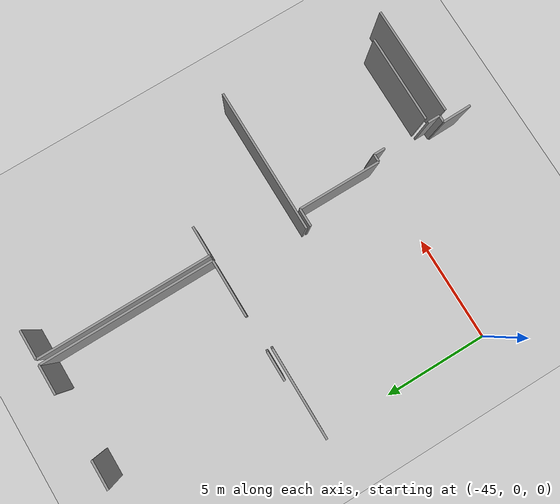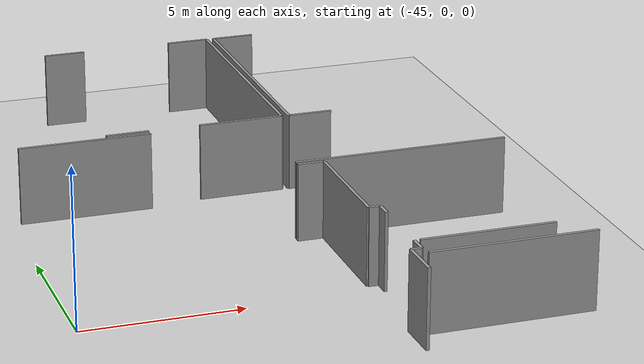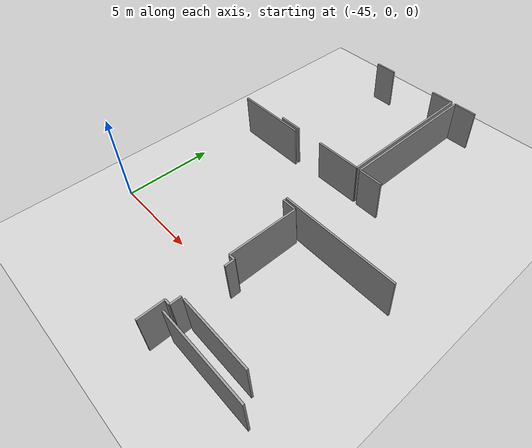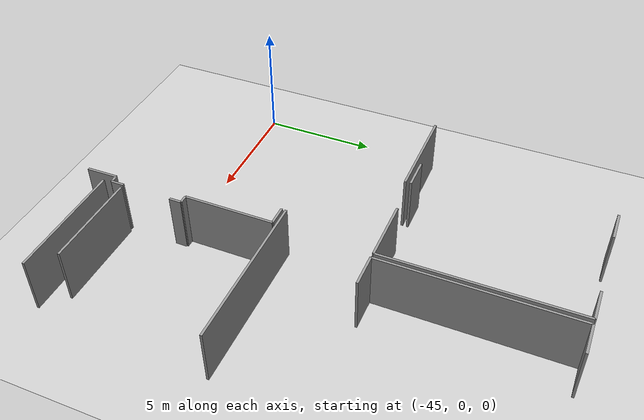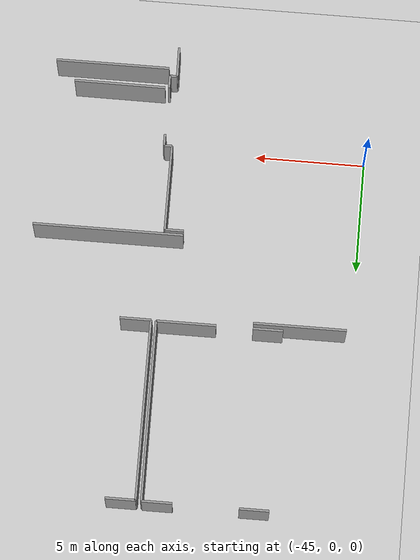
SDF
<sdf version="1.6">
 <world name="default">
  <model name="ground_plane">
   <static>1</static>
   <link name="link">
    <collision name="collision">
     <geometry><plane><normal>0 0 1</normal><size>100 100</size></plane></geometry>
     <surface><friction><ode><mu>100</mu><mu2>50</mu2></ode></friction></surface>
    </collision>
    <visual name="visual">
     <cast_shadows>0</cast_shadows>
     <geometry><plane><normal>0 0 1</normal><size>100 100</size></plane></geometry>
     <material>
      <script><uri>file://media/materials/scripts/gazebo.material</uri><name>Gazebo/Grey</name></script>
     </material>
    </visual>
   </link>
  </model>
  <model name="50041173">
   <static>1</static>
   <link name="Wall_6">
    <collision name="Wall_6_Collision">
     <geometry><box><size>2.70963974714 0.1 2.5</size></box></geometry>
     <pose>1.35481987357 0 1.25 0 0 0</pose>
    </collision>
    <visual name="Wall_6_Visual">
     <pose>1.35481987357 0 1.25 0 0 0</pose>
     <geometry><box><size>2.70963974714 0.1 2.5</size></box></geometry>
     <material>
      <script><uri>file://media/materials/scripts/gazebo.material</uri><name>Gazebo/Grey</name></script>
      <ambient>1 1 1 1</ambient>
     </material>
    </visual>
    <pose>29.5275330676 -8.22780471705 0 0 0 3.14159265359</pose>
   </link>
   <link name="Wall_7">
    <collision name="Wall_7_Collision">
     <geometry><box><size>1.36865622382 0.1 2.5</size></box></geometry>
     <pose>0.684328111909 0 1.25 0 0 0</pose>
    </collision>
    <visual name="Wall_7_Visual">
     <pose>0.684328111909 0 1.25 0 0 0</pose>
     <geometry><box><size>1.36865622382 0.1 2.5</size></box></geometry>
     <material>
      <script><uri>file://media/materials/scripts/gazebo.material</uri><name>Gazebo/Grey</name></script>
      <ambient>1 1 1 1</ambient>
     </material>
    </visual>
    <pose>25.1530884257 -8.22780471705 0 0 0 3.14159265359</pose>
   </link>
   <link name="Wall_9">
    <collision name="Wall_9_Collision">
     <geometry><box><size>1.35380436162 0.1 2.5</size></box></geometry>
     <pose>0.676902180812 0 1.25 0 0 0</pose>
    </collision>
    <visual name="Wall_9_Visual">
     <pose>0.676902180812 0 1.25 0 0 0</pose>
     <geometry><box><size>1.35380436162 0.1 2.5</size></box></geometry>
     <material>
      <script><uri>file://media/materials/scripts/gazebo.material</uri><name>Gazebo/Grey</name></script>
      <ambient>1 1 1 1</ambient>
     </material>
    </visual>
    <pose>23.7844322019 -0.00964736347711 0 0 0 0.0</pose>
   </link>
   <link name="Wall_10">
    <collision name="Wall_10_Collision">
     <geometry><box><size>1.37906522125 0.1 2.5</size></box></geometry>
     <pose>0.689532610627 0 1.25 0 0 0</pose>
    </collision>
    <visual name="Wall_10_Visual">
     <pose>0.689532610627 0 1.25 0 0 0</pose>
     <geometry><box><size>1.37906522125 0.1 2.5</size></box></geometry>
     <material>
      <script><uri>file://media/materials/scripts/gazebo.material</uri><name>Gazebo/Grey</name></script>
      <ambient>1 1 1 1</ambient>
     </material>
    </visual>
    <pose>28.1268882175 -0.00964736347711 0 0 0 0.0</pose>
   </link>
   <link name="Wall_11">
    <collision name="Wall_11_Collision">
     <geometry><box><size>8.21818568594 0.1 2.5</size></box></geometry>
     <pose>4.10909284297 0 1.25 0 0 0</pose>
    </collision>
    <visual name="Wall_11_Visual">
     <pose>4.10909284297 0 1.25 0 0 0</pose>
     <geometry><box><size>8.21818568594 0.1 2.5</size></box></geometry>
     <material>
      <script><uri>file://media/materials/scripts/gazebo.material</uri><name>Gazebo/Grey</name></script>
      <ambient>1 1 1 1</ambient>
     </material>
    </visual>
    <pose>29.5059534388 -0.00964736347711 0 0 0 -1.56817048522</pose>
   </link>
   <link name="Wall_13">
    <collision name="Wall_13_Collision">
     <geometry><box><size>1.40800731169 0.1 2.5</size></box></geometry>
     <pose>0.704003655843 0 1.25 0 0 0</pose>
    </collision>
    <visual name="Wall_13_Visual">
     <pose>0.704003655843 0 1.25 0 0 0</pose>
     <geometry><box><size>1.40800731169 0.1 2.5</size></box></geometry>
     <material>
      <script><uri>file://media/materials/scripts/gazebo.material</uri><name>Gazebo/Grey</name></script>
      <ambient>1 1 1 1</ambient>
     </material>
    </visual>
    <pose>31.1679656757 -8.24595699307 0 0 0 3.14159265359</pose>
   </link>
   <link name="Wall_14">
    <collision name="Wall_14_Collision">
     <geometry><box><size>8.22602757115 0.1 2.5</size></box></geometry>
     <pose>4.11301378557 0 1.25 0 0 0</pose>
    </collision>
    <visual name="Wall_14_Visual">
     <pose>4.11301378557 0 1.25 0 0 0</pose>
     <geometry><box><size>8.22602757115 0.1 2.5</size></box></geometry>
     <material>
      <script><uri>file://media/materials/scripts/gazebo.material</uri><name>Gazebo/Grey</name></script>
      <ambient>1 1 1 1</ambient>
     </material>
    </visual>
    <pose>29.759958364 -8.24595699307 0 0 0 1.57079632679</pose>
   </link>
   <link name="Wall_15">
    <collision name="Wall_15_Collision">
     <geometry><box><size>1.37551092945 0.1 2.5</size></box></geometry>
     <pose>0.687755464724 0 1.25 0 0 0</pose>
    </collision>
    <visual name="Wall_15_Visual">
     <pose>0.687755464724 0 1.25 0 0 0</pose>
     <geometry><box><size>1.37551092945 0.1 2.5</size></box></geometry>
     <material>
      <script><uri>file://media/materials/scripts/gazebo.material</uri><name>Gazebo/Grey</name></script>
      <ambient>1 1 1 1</ambient>
     </material>
    </visual>
    <pose>29.759958364 -0.0199294219198 0 0 0 0.0</pose>
   </link>
   <link name="Wall_29">
    <collision name="Wall_29_Collision">
     <geometry><box><size>4.21348599863 0.1 2.5</size></box></geometry>
     <pose>2.10674299931 0 1.25 0 0 0</pose>
    </collision>
    <visual name="Wall_29_Visual">
     <pose>2.10674299931 0 1.25 0 0 0</pose>
     <geometry><box><size>4.21348599863 0.1 2.5</size></box></geometry>
     <material>
      <script><uri>file://media/materials/scripts/gazebo.material</uri><name>Gazebo/Grey</name></script>
      <ambient>1 1 1 1</ambient>
     </material>
    </visual>
    <pose>25.1530884257 -8.47292391277 0 0 0 3.14159265359</pose>
   </link>
   <link name="Wall_35">
    <collision name="Wall_35_Collision">
     <geometry><box><size>6.83414151159 0.1 2.5</size></box></geometry>
     <pose>3.41707075579 0 1.25 0 0 0</pose>
    </collision>
    <visual name="Wall_35_Visual">
     <pose>3.41707075579 0 1.25 0 0 0</pose>
     <geometry><box><size>6.83414151159 0.1 2.5</size></box></geometry>
     <material>
      <script><uri>file://media/materials/scripts/gazebo.material</uri><name>Gazebo/Grey</name></script>
      <ambient>1 1 1 1</ambient>
     </material>
    </visual>
    <pose>28.6416258346 -12.2771585976 0 0 0 0.0</pose>
   </link>
   <link name="Wall_281">
    <collision name="Wall_281_Collision">
     <geometry><box><size>0.854172484704 0.1 2.5</size></box></geometry>
     <pose>0.427086242352 0 1.25 0 0 0</pose>
    </collision>
    <visual name="Wall_281_Visual">
     <pose>0.427086242352 0 1.25 0 0 0</pose>
     <geometry><box><size>0.854172484704 0.1 2.5</size></box></geometry>
     <material>
      <script><uri>file://media/materials/scripts/gazebo.material</uri><name>Gazebo/Grey</name></script>
      <ambient>1 1 1 1</ambient>
     </material>
    </visual>
    <pose>28.6321054101 -12.4736601589 0 0 0 0.0</pose>
   </link>
   <link name="Wall_282">
    <collision name="Wall_282_Collision">
     <geometry><box><size>3.91847977862 0.1 2.5</size></box></geometry>
     <pose>1.95923988931 0 1.25 0 0 0</pose>
    </collision>
    <visual name="Wall_282_Visual">
     <pose>1.95923988931 0 1.25 0 0 0</pose>
     <geometry><box><size>3.91847977862 0.1 2.5</size></box></geometry>
     <material>
      <script><uri>file://media/materials/scripts/gazebo.material</uri><name>Gazebo/Grey</name></script>
      <ambient>1 1 1 1</ambient>
     </material>
    </visual>
    <pose>29.4862778948 -12.4736601589 0 0 0 -1.57079632679</pose>
   </link>
   <link name="Wall_283">
    <collision name="Wall_283_Collision">
     <geometry><box><size>0.358094899591 0.1 2.5</size></box></geometry>
     <pose>0.179047449796 0 1.25 0 0 0</pose>
    </collision>
    <visual name="Wall_283_Visual">
     <pose>0.179047449796 0 1.25 0 0 0</pose>
     <geometry><box><size>0.358094899591 0.1 2.5</size></box></geometry>
     <material>
      <script><uri>file://media/materials/scripts/gazebo.material</uri><name>Gazebo/Grey</name></script>
      <ambient>1 1 1 1</ambient>
     </material>
    </visual>
    <pose>29.4862778948 -16.3921399375 0 0 0 0.0</pose>
   </link>
   <link name="Wall_284">
    <collision name="Wall_284_Collision">
     <geometry><box><size>0.529843357282 0.1 2.5</size></box></geometry>
     <pose>0.264921678641 0 1.25 0 0 0</pose>
    </collision>
    <visual name="Wall_284_Visual">
     <pose>0.264921678641 0 1.25 0 0 0</pose>
     <geometry><box><size>0.529843357282 0.1 2.5</size></box></geometry>
     <material>
      <script><uri>file://media/materials/scripts/gazebo.material</uri><name>Gazebo/Grey</name></script>
      <ambient>1 1 1 1</ambient>
     </material>
    </visual>
    <pose>29.8443727944 -16.3921399375 0 0 0 -1.57079632679</pose>
   </link>
   <link name="Wall_285">
    <collision name="Wall_285_Collision">
     <geometry><box><size>0.575922211785 0.1 2.5</size></box></geometry>
     <pose>0.287961105893 0 1.25 0 0 0</pose>
    </collision>
    <visual name="Wall_285_Visual">
     <pose>0.287961105893 0 1.25 0 0 0</pose>
     <geometry><box><size>0.575922211785 0.1 2.5</size></box></geometry>
     <material>
      <script><uri>file://media/materials/scripts/gazebo.material</uri><name>Gazebo/Grey</name></script>
      <ambient>1 1 1 1</ambient>
     </material>
    </visual>
    <pose>29.8443727944 -19.1200588997 0 0 0 -1.57079632679</pose>
   </link>
   <link name="Wall_286">
    <collision name="Wall_286_Collision">
     <geometry><box><size>0.329279748153 0.1 2.5</size></box></geometry>
     <pose>0.164639874077 0 1.25 0 0 0</pose>
    </collision>
    <visual name="Wall_286_Visual">
     <pose>0.164639874077 0 1.25 0 0 0</pose>
     <geometry><box><size>0.329279748153 0.1 2.5</size></box></geometry>
     <material>
      <script><uri>file://media/materials/scripts/gazebo.material</uri><name>Gazebo/Grey</name></script>
      <ambient>1 1 1 1</ambient>
     </material>
    </visual>
    <pose>29.8443727944 -19.6959811115 0 0 0 3.14159265359</pose>
   </link>
   <link name="Wall_287">
    <collision name="Wall_287_Collision">
     <geometry><box><size>1.37186852449 0.1 2.5</size></box></geometry>
     <pose>0.685934262246 0 1.25 0 0 0</pose>
    </collision>
    <visual name="Wall_287_Visual">
     <pose>0.685934262246 0 1.25 0 0 0</pose>
     <geometry><box><size>1.37186852449 0.1 2.5</size></box></geometry>
     <material>
      <script><uri>file://media/materials/scripts/gazebo.material</uri><name>Gazebo/Grey</name></script>
      <ambient>1 1 1 1</ambient>
     </material>
    </visual>
    <pose>29.5150930463 -19.6959811115 0 0 0 -1.55525066083</pose>
   </link>
   <link name="Wall_290">
    <collision name="Wall_290_Collision">
     <geometry><box><size>4.15044158013 0.1 2.5</size></box></geometry>
     <pose>2.07522079006 0 1.25 0 0 0</pose>
    </collision>
    <visual name="Wall_290_Visual">
     <pose>2.07522079006 0 1.25 0 0 0</pose>
     <geometry><box><size>4.15044158013 0.1 2.5</size></box></geometry>
     <material>
      <script><uri>file://media/materials/scripts/gazebo.material</uri><name>Gazebo/Grey</name></script>
      <ambient>1 1 1 1</ambient>
     </material>
    </visual>
    <pose>30.0222143238 -19.1237401305 0 0 0 -0.00461826909923</pose>
   </link>
   <link name="Wall_292">
    <collision name="Wall_292_Collision">
     <geometry><box><size>5.17479499353 0.1 2.5</size></box></geometry>
     <pose>2.58739749676 0 1.25 0 0 0</pose>
    </collision>
    <visual name="Wall_292_Visual">
     <pose>2.58739749676 0 1.25 0 0 0</pose>
     <geometry><box><size>5.17479499353 0.1 2.5</size></box></geometry>
     <material>
      <script><uri>file://media/materials/scripts/gazebo.material</uri><name>Gazebo/Grey</name></script>
      <ambient>1 1 1 1</ambient>
     </material>
    </visual>
    <pose>29.9120312778 -20.0493792683 0 0 0 0.0</pose>
   </link>
   <pose>-65.65 16.778664094 0 0 0 0</pose>
  </model>
 </world>
</sdf>
